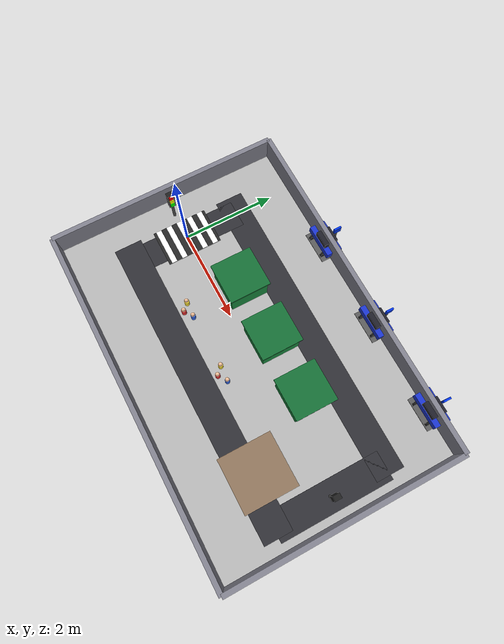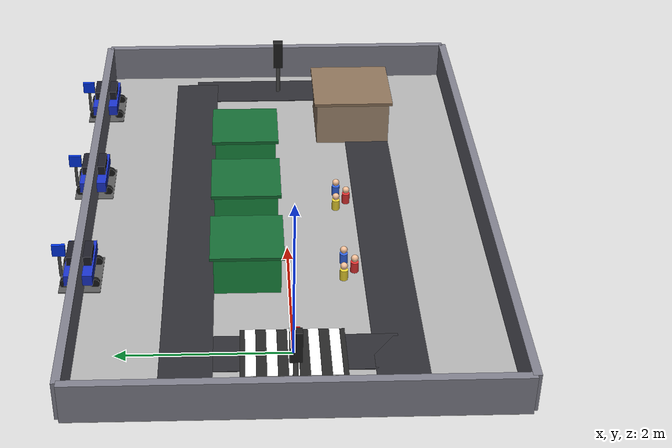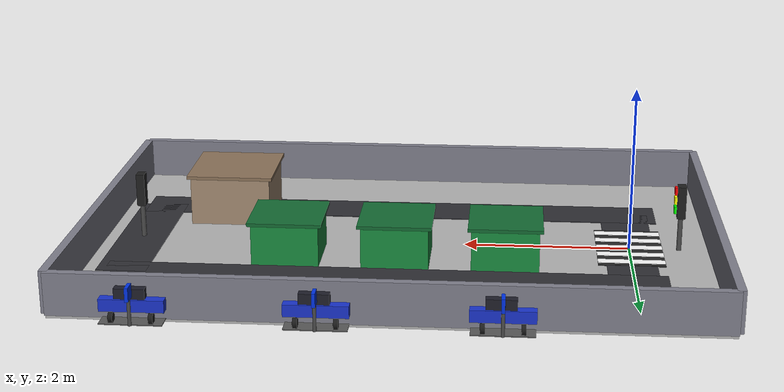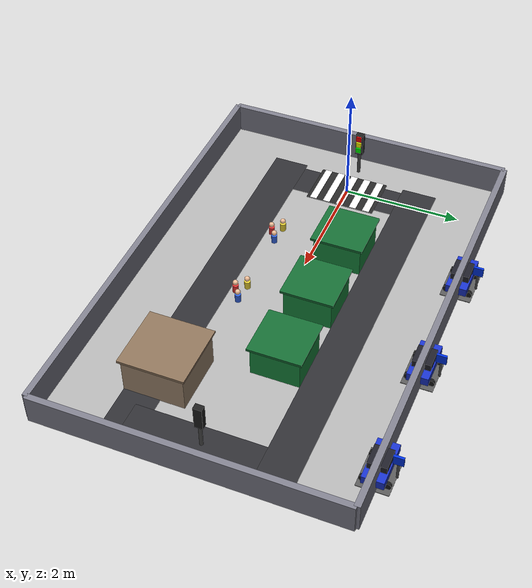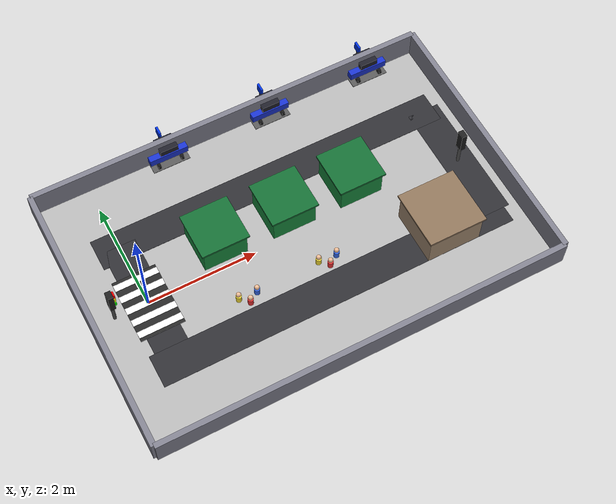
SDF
<?xml version="1.0" ?>
<sdf version="1.6">
  <world name="robot_nav_field">

    <!-- ======================= 物理引擎 ======================= -->
    <physics type="ode">
      <max_step_size>0.001</max_step_size>
      <real_time_factor>1</real_time_factor>
      <real_time_update_rate>1000</real_time_update_rate>
    </physics>

    <!-- ======================= 场景与光照 ======================= -->
    <scene>
      <ambient>0.45 0.45 0.45 1</ambient>
      <background>0.7 0.7 0.7 1</background>
      <shadows>true</shadows>
    </scene>

    <light name="sun" type="directional">
      <pose>0 0 10 0 0 0</pose>
      <diffuse>0.8 0.8 0.8 1</diffuse>
      <specular>0.1 0.1 0.1 1</specular>
      <direction>0.3 0.3 -1</direction>
      <cast_shadows>true</cast_shadows>
    </light>

    <!-- ============================================================
         1. 地面 (Ground Plane)  —— 7.5m x 5m, 上表面在 z=0
         ============================================================ -->
    <model name="ground_plane">
      <static>true</static>
      <pose>2.75 0 -0.025 0 0 0</pose>
      <link name="ground_link">
        <visual name="ground_visual">
          <geometry>
            <box><size>7.5 5.0 0.05</size></box>
          </geometry>
          <material>
            <ambient>0.70 0.70 0.70 1</ambient>
            <diffuse>0.70 0.70 0.70 1</diffuse>
          </material>
        </visual>
        <collision name="ground_collision">
          <geometry>
            <box><size>7.5 5.0 0.05</size></box>
          </geometry>
        </collision>
      </link>
    </model>

    <!-- ============================================================
         2. 外部围墙 (Boundary Walls)  —— 高 0.5m, 防机器人跑出
         ============================================================ -->
    <model name="boundary_walls">
      <static>true</static>
      <!-- 北墙 (顶部, X=-1.0) -->
      <link name="north_wall">
        <pose>-1.0 0 0.25 0 0 0</pose>
        <visual name="north_visual">
          <geometry><box><size>0.1 5.0 0.5</size></box></geometry>
          <material><ambient>0.50 0.50 0.55 1</ambient><diffuse>0.50 0.50 0.55 1</diffuse></material>
        </visual>
        <collision name="north_collision">
          <geometry><box><size>0.1 5.0 0.5</size></box></geometry>
        </collision>
      </link>
      <!-- 南墙 (底部, X=6.5) -->
      <link name="south_wall">
        <pose>6.5 0 0.25 0 0 0</pose>
        <visual name="south_visual">
          <geometry><box><size>0.1 5.0 0.5</size></box></geometry>
          <material><ambient>0.50 0.50 0.55 1</ambient><diffuse>0.50 0.50 0.55 1</diffuse></material>
        </visual>
        <collision name="south_collision">
          <geometry><box><size>0.1 5.0 0.5</size></box></geometry>
        </collision>
      </link>
      <!-- 西墙 (左侧, Y=-2.5) -->
      <link name="west_wall">
        <pose>2.75 -2.5 0.25 0 0 0</pose>
        <visual name="west_visual">
          <geometry><box><size>7.5 0.1 0.5</size></box></geometry>
          <material><ambient>0.50 0.50 0.55 1</ambient><diffuse>0.50 0.50 0.55 1</diffuse></material>
        </visual>
        <collision name="west_collision">
          <geometry><box><size>7.5 0.1 0.5</size></box></geometry>
        </collision>
      </link>
      <!-- 东墙 (右侧, Y=2.5) -->
      <link name="east_wall">
        <pose>2.75 2.5 0.25 0 0 0</pose>
        <visual name="east_visual">
          <geometry><box><size>7.5 0.1 0.5</size></box></geometry>
          <material><ambient>0.50 0.50 0.55 1</ambient><diffuse>0.50 0.50 0.55 1</diffuse></material>
        </visual>
        <collision name="east_collision">
          <geometry><box><size>7.5 0.1 0.5</size></box></geometry>
        </collision>
      </link>
    </model>

    <model name="roads">
      <static>true</static>
      <!-- 右侧主干道 -->
      <link name="road_right">
        <pose>2.9 1.2 0.005 0 0 0</pose>
        <visual name="road_right_visual">
          <geometry><box><size>6.6 0.6 0.01</size></box></geometry>
          <material><ambient>0.18 0.18 0.20 1</ambient><diffuse>0.18 0.18 0.20 1</diffuse></material>
        </visual>
        <collision name="road_right_collision">
          <geometry><box><size>6.6 0.6 0.01</size></box></geometry>
        </collision>
      </link>
      <!-- 左侧主干道 -->
      <link name="road_left">
        <pose>2.9 -1.2 0.005 0 0 0</pose>
        <visual name="road_left_visual">
          <geometry><box><size>6.6 0.6 0.01</size></box></geometry>
          <material><ambient>0.18 0.18 0.20 1</ambient><diffuse>0.18 0.18 0.20 1</diffuse></material>
        </visual>
        <collision name="road_left_collision">
          <geometry><box><size>6.6 0.6 0.01</size></box></geometry>
        </collision>
      </link>
      <!-- 顶部横向道路 (起点区) -->
      <link name="road_top">
        <pose>0 0 0.005 0 0 0</pose>
        <visual name="road_top_visual">
          <geometry><box><size>0.6 2.4 0.01</size></box></geometry>
          <material><ambient>0.18 0.18 0.20 1</ambient><diffuse>0.18 0.18 0.20 1</diffuse></material>
        </visual>
        <collision name="road_top_collision">
          <geometry><box><size>0.6 2.4 0.01</size></box></geometry>
        </collision>
      </link>
      <!-- 底部横向道路 (底部红绿灯路口) -->
      <link name="road_bottom">
        <pose>6.0 0 0.005 0 0 0</pose>
        <visual name="road_bottom_visual">
          <geometry><box><size>0.6 2.4 0.01</size></box></geometry>
          <material><ambient>0.18 0.18 0.20 1</ambient><diffuse>0.18 0.18 0.20 1</diffuse></material>
        </visual>
        <collision name="road_bottom_collision">
          <geometry><box><size>0.6 2.4 0.01</size></box></geometry>
        </collision>
      </link>
    </model>

    <!-- ============================================================
         4. 起点/终点区 (Start/Finish)  —— 斑马线, 中心 (0,0,0)
         ============================================================ -->
    <model name="zebra_crossing">
      <static>true</static>
      <link name="zebra_link">
        <!-- 深色底板 -->
        <visual name="zebra_base">
          <pose>0 0 0.006 0 0 0</pose>
          <geometry><box><size>0.8 1.2 0.012</size></box></geometry>
          <material><ambient>0.15 0.15 0.15 1</ambient><diffuse>0.15 0.15 0.15 1</diffuse></material>
        </visual>
        <collision name="zebra_base_col">
          <pose>0 0 0.006 0 0 0</pose>
          <geometry><box><size>0.8 1.2 0.012</size></box></geometry>
        </collision>
        <!-- 白色斑马条纹 (沿 Y 方向排布 5 条) -->
        <visual name="zebra_stripe_1">
          <pose>0 -0.48 0.013 0 0 0</pose>
          <geometry><box><size>0.8 0.12 0.014</size></box></geometry>
          <material><ambient>1 1 1 1</ambient><diffuse>1 1 1 1</diffuse></material>
        </visual>
        <visual name="zebra_stripe_2">
          <pose>0 -0.24 0.013 0 0 0</pose>
          <geometry><box><size>0.8 0.12 0.014</size></box></geometry>
          <material><ambient>1 1 1 1</ambient><diffuse>1 1 1 1</diffuse></material>
        </visual>
        <visual name="zebra_stripe_3">
          <pose>0 0 0.013 0 0 0</pose>
          <geometry><box><size>0.8 0.12 0.014</size></box></geometry>
          <material><ambient>1 1 1 1</ambient><diffuse>1 1 1 1</diffuse></material>
        </visual>
        <visual name="zebra_stripe_4">
          <pose>0 0.24 0.013 0 0 0</pose>
          <geometry><box><size>0.8 0.12 0.014</size></box></geometry>
          <material><ambient>1 1 1 1</ambient><diffuse>1 1 1 1</diffuse></material>
        </visual>
        <visual name="zebra_stripe_5">
          <pose>0 0.48 0.013 0 0 0</pose>
          <geometry><box><size>0.8 0.12 0.014</size></box></geometry>
          <material><ambient>1 1 1 1</ambient><diffuse>1 1 1 1</diffuse></material>
        </visual>
      </link>
    </model>

    <!-- ============================================================
         5. 顶部红绿灯  —— 立杆 + 红黄绿三灯, 位于起点线正前方 (-X)
         ============================================================ -->
    <model name="traffic_light_top">
      <static>true</static>
      <link name="tl_top_link">
        <!-- 立杆 -->
        <visual name="pole_visual">
          <pose>-0.6 0 0.3 0 0 0</pose>
          <geometry><cylinder><radius>0.03</radius><length>0.6</length></cylinder></geometry>
          <material><ambient>0.30 0.30 0.30 1</ambient><diffuse>0.30 0.30 0.30 1</diffuse></material>
        </visual>
        <collision name="pole_col">
          <pose>-0.6 0 0.3 0 0 0</pose>
          <geometry><cylinder><radius>0.03</radius><length>0.6</length></cylinder></geometry>
        </collision>
        <!-- 灯箱 -->
        <visual name="housing_visual">
          <pose>-0.6 0 0.62 0 0 0</pose>
          <geometry><box><size>0.10 0.14 0.40</size></box></geometry>
          <material><ambient>0.12 0.12 0.12 1</ambient><diffuse>0.12 0.12 0.12 1</diffuse></material>
        </visual>
        <collision name="housing_col">
          <pose>-0.6 0 0.62 0 0 0</pose>
          <geometry><box><size>0.10 0.14 0.40</size></box></geometry>
        </collision>
        <!-- 红灯 (上) -->
        <visual name="red_visual">
          <pose>-0.53 0 0.76 0 0 0</pose>
          <geometry><box><size>0.03 0.09 0.09</size></box></geometry>
          <material><ambient>1 0 0 1</ambient><diffuse>1 0 0 1</diffuse></material>
        </visual>
        <!-- 黄灯 (中) -->
        <visual name="yellow_visual">
          <pose>-0.53 0 0.64 0 0 0</pose>
          <geometry><box><size>0.03 0.09 0.09</size></box></geometry>
          <material><ambient>1 1 0 1</ambient><diffuse>1 1 0 1</diffuse></material>
        </visual>
        <!-- 绿灯 (下) -->
        <visual name="green_visual">
          <pose>-0.53 0 0.52 0 0 0</pose>
          <geometry><box><size>0.03 0.09 0.09</size></box></geometry>
          <material><ambient>0 1 0 1</ambient><diffuse>0 1 0 1</diffuse></material>
        </visual>
      </link>
    </model>

    <!-- ============================================================
         6. 底部红绿灯  —— 站房右侧 / 底部路口 (X≈6.0, Y=0)
         ============================================================ -->
    <model name="traffic_light_bottom">
      <static>true</static>
      <link name="tl_bottom_link">
        <visual name="pole_visual">
          <pose>6.0 0 0.3 0 0 0</pose>
          <geometry><cylinder><radius>0.03</radius><length>0.6</length></cylinder></geometry>
          <material><ambient>0.30 0.30 0.30 1</ambient><diffuse>0.30 0.30 0.30 1</diffuse></material>
        </visual>
        <collision name="pole_col">
          <pose>6.0 0 0.3 0 0 0</pose>
          <geometry><cylinder><radius>0.03</radius><length>0.6</length></cylinder></geometry>
        </collision>
        <visual name="housing_visual">
          <pose>6.0 0 0.62 0 0 0</pose>
          <geometry><box><size>0.10 0.14 0.40</size></box></geometry>
          <material><ambient>0.12 0.12 0.12 1</ambient><diffuse>0.12 0.12 0.12 1</diffuse></material>
        </visual>
        <collision name="housing_col">
          <pose>6.0 0 0.62 0 0 0</pose>
          <geometry><box><size>0.10 0.14 0.40</size></box></geometry>
        </collision>
        <visual name="red_visual">
          <pose>5.97 0 0.76 0 0 0</pose>
          <geometry><box><size>0.03 0.09 0.09</size></box></geometry>
          <material><ambient>1 0 0 1</ambient><diffuse>1 0 0 1</diffuse></material>
        </visual>
        <visual name="yellow_visual">
          <pose>5.97 0 0.64 0 0 0</pose>
          <geometry><box><size>0.03 0.09 0.09</size></box></geometry>
          <material><ambient>1 1 0 1</ambient><diffuse>1 1 0 1</diffuse></material>
        </visual>
        <visual name="green_visual">
          <pose>5.97 0 0.52 0 0 0</pose>
          <geometry><box><size>0.03 0.09 0.09</size></box></geometry>
          <material><ambient>0 1 0 1</ambient><diffuse>0 1 0 1</diffuse></material>
        </visual>
      </link>
    </model>

    <!-- ============================================================
         7. 中间建筑群 (楼宇 A / B / C)  —— 绿色长方体
         ============================================================ -->
    <model name="building_a">
      <static>true</static>
      <pose>1.5 0.5 0 0 0 0</pose>
      <link name="building_a_link">
        <visual name="body">
          <pose>0 0 0.25 0 0 0</pose>
          <geometry><box><size>0.8 0.8 0.5</size></box></geometry>
          <material><ambient>0.10 0.55 0.25 1</ambient><diffuse>0.10 0.55 0.25 1</diffuse></material>
        </visual>
        <collision name="body_col">
          <pose>0 0 0.25 0 0 0</pose>
          <geometry><box><size>0.8 0.8 0.5</size></box></geometry>
        </collision>
        <visual name="roof">
          <pose>0 0 0.52 0 0 0</pose>
          <geometry><box><size>0.88 0.88 0.04</size></box></geometry>
          <material><ambient>0.08 0.42 0.20 1</ambient><diffuse>0.08 0.42 0.20 1</diffuse></material>
        </visual>
      </link>
    </model>

    <model name="building_b">
      <static>true</static>
      <pose>2.8 0.5 0 0 0 0</pose>
      <link name="building_b_link">
        <visual name="body">
          <pose>0 0 0.25 0 0 0</pose>
          <geometry><box><size>0.8 0.8 0.5</size></box></geometry>
          <material><ambient>0.10 0.55 0.25 1</ambient><diffuse>0.10 0.55 0.25 1</diffuse></material>
        </visual>
        <collision name="body_col">
          <pose>0 0 0.25 0 0 0</pose>
          <geometry><box><size>0.8 0.8 0.5</size></box></geometry>
        </collision>
        <visual name="roof">
          <pose>0 0 0.52 0 0 0</pose>
          <geometry><box><size>0.88 0.88 0.04</size></box></geometry>
          <material><ambient>0.08 0.42 0.20 1</ambient><diffuse>0.08 0.42 0.20 1</diffuse></material>
        </visual>
      </link>
    </model>

    <model name="building_c">
      <static>true</static>
      <pose>4.1 0.5 0 0 0 0</pose>
      <link name="building_c_link">
        <visual name="body">
          <pose>0 0 0.25 0 0 0</pose>
          <geometry><box><size>0.8 0.8 0.5</size></box></geometry>
          <material><ambient>0.10 0.55 0.25 1</ambient><diffuse>0.10 0.55 0.25 1</diffuse></material>
        </visual>
        <collision name="body_col">
          <pose>0 0 0.25 0 0 0</pose>
          <geometry><box><size>0.8 0.8 0.5</size></box></geometry>
        </collision>
        <visual name="roof">
          <pose>0 0 0.52 0 0 0</pose>
          <geometry><box><size>0.88 0.88 0.04</size></box></geometry>
          <material><ambient>0.08 0.42 0.20 1</ambient><diffuse>0.08 0.42 0.20 1</diffuse></material>
        </visual>
      </link>
    </model>

    <model name="parking_slots">
      <static>true</static>
      <!-- 3号车位 -->
      <link name="slot_3">
        <pose>1.5 2.5 0.006 0 0 0</pose>
        <visual name="slot3_visual">
          <geometry><box><size>0.7 0.5 0.012</size></box></geometry>
          <material><ambient>0.35 0.35 0.35 1</ambient><diffuse>0.35 0.35 0.35 1</diffuse></material>
        </visual>
        <collision name="slot3_col">
          <geometry><box><size>0.7 0.5 0.012</size></box></geometry>
        </collision>
      </link>
      <!-- 2号车位 -->
      <link name="slot_2">
        <pose>3.5 2.5 0.006 0 0 0</pose>
        <visual name="slot2_visual">
          <geometry><box><size>0.7 0.5 0.012</size></box></geometry>
          <material><ambient>0.35 0.35 0.35 1</ambient><diffuse>0.35 0.35 0.35 1</diffuse></material>
        </visual>
        <collision name="slot2_col">
          <geometry><box><size>0.7 0.5 0.012</size></box></geometry>
        </collision>
      </link>
      <!-- 1号车位 -->
      <link name="slot_1">
        <pose>5.5 2.5 0.006 0 0 0</pose>
        <visual name="slot1_visual">
          <geometry><box><size>0.7 0.5 0.012</size></box></geometry>
          <material><ambient>0.35 0.35 0.35 1</ambient><diffuse>0.35 0.35 0.35 1</diffuse></material>
        </visual>
        <collision name="slot1_col">
          <geometry><box><size>0.7 0.5 0.012</size></box></geometry>
        </collision>
      </link>
    </model>

    <!-- ============================================================
         9. 蓝色电动车 (3辆)  —— 车身 + 车顶 + 4 轮
         ============================================================ -->
    <model name="car_3">
      <static>true</static>
      <pose>1.5 2.5 0 0 0 0</pose>
      <link name="car_3_link">
        <visual name="body">
          <pose>0 0 0.19 0 0 0</pose>
          <geometry><box><size>0.72 0.34 0.14</size></box></geometry>
          <material><ambient>0.10 0.20 0.80 1</ambient><diffuse>0.10 0.20 0.80 1</diffuse></material>
        </visual>
        <collision name="body_col">
          <pose>0 0 0.19 0 0 0</pose>
          <geometry><box><size>0.72 0.34 0.14</size></box></geometry>
        </collision>
        <visual name="cabin">
          <pose>0.02 0 0.32 0 0 0</pose>
          <geometry><box><size>0.34 0.30 0.12</size></box></geometry>
          <material><ambient>0.12 0.12 0.16 1</ambient><diffuse>0.12 0.12 0.16 1</diffuse></material>
        </visual>
        <collision name="cabin_col">
          <pose>0.02 0 0.32 0 0 0</pose>
          <geometry><box><size>0.34 0.30 0.12</size></box></geometry>
        </collision>
        <visual name="wheel_fr"><pose>0.22 0.18 0.06 0 1.5708 0</pose><geometry><cylinder><radius>0.06</radius><length>0.05</length></cylinder></geometry><material><ambient>0.10 0.10 0.10 1</ambient><diffuse>0.10 0.10 0.10 1</diffuse></material></visual>
        <visual name="wheel_fl"><pose>0.22 -0.18 0.06 0 1.5708 0</pose><geometry><cylinder><radius>0.06</radius><length>0.05</length></cylinder></geometry><material><ambient>0.10 0.10 0.10 1</ambient><diffuse>0.10 0.10 0.10 1</diffuse></material></visual>
        <visual name="wheel_rr"><pose>-0.22 0.18 0.06 0 1.5708 0</pose><geometry><cylinder><radius>0.06</radius><length>0.05</length></cylinder></geometry><material><ambient>0.10 0.10 0.10 1</ambient><diffuse>0.10 0.10 0.10 1</diffuse></material></visual>
        <visual name="wheel_rl"><pose>-0.22 -0.18 0.06 0 1.5708 0</pose><geometry><cylinder><radius>0.06</radius><length>0.05</length></cylinder></geometry><material><ambient>0.10 0.10 0.10 1</ambient><diffuse>0.10 0.10 0.10 1</diffuse></material></visual>
      </link>
    </model>

    <model name="car_2">
      <static>true</static>
      <pose>3.5 2.5 0 0 0 0</pose>
      <link name="car_2_link">
        <visual name="body">
          <pose>0 0 0.19 0 0 0</pose>
          <geometry><box><size>0.72 0.34 0.14</size></box></geometry>
          <material><ambient>0.10 0.20 0.80 1</ambient><diffuse>0.10 0.20 0.80 1</diffuse></material>
        </visual>
        <collision name="body_col">
          <pose>0 0 0.19 0 0 0</pose>
          <geometry><box><size>0.72 0.34 0.14</size></box></geometry>
        </collision>
        <visual name="cabin">
          <pose>0.02 0 0.32 0 0 0</pose>
          <geometry><box><size>0.34 0.30 0.12</size></box></geometry>
          <material><ambient>0.12 0.12 0.16 1</ambient><diffuse>0.12 0.12 0.16 1</diffuse></material>
        </visual>
        <collision name="cabin_col">
          <pose>0.02 0 0.32 0 0 0</pose>
          <geometry><box><size>0.34 0.30 0.12</size></box></geometry>
        </collision>
        <visual name="wheel_fr"><pose>0.22 0.18 0.06 0 1.5708 0</pose><geometry><cylinder><radius>0.06</radius><length>0.05</length></cylinder></geometry><material><ambient>0.10 0.10 0.10 1</ambient><diffuse>0.10 0.10 0.10 1</diffuse></material></visual>
        <visual name="wheel_fl"><pose>0.22 -0.18 0.06 0 1.5708 0</pose><geometry><cylinder><radius>0.06</radius><length>0.05</length></cylinder></geometry><material><ambient>0.10 0.10 0.10 1</ambient><diffuse>0.10 0.10 0.10 1</diffuse></material></visual>
        <visual name="wheel_rr"><pose>-0.22 0.18 0.06 0 1.5708 0</pose><geometry><cylinder><radius>0.06</radius><length>0.05</length></cylinder></geometry><material><ambient>0.10 0.10 0.10 1</ambient><diffuse>0.10 0.10 0.10 1</diffuse></material></visual>
        <visual name="wheel_rl"><pose>-0.22 -0.18 0.06 0 1.5708 0</pose><geometry><cylinder><radius>0.06</radius><length>0.05</length></cylinder></geometry><material><ambient>0.10 0.10 0.10 1</ambient><diffuse>0.10 0.10 0.10 1</diffuse></material></visual>
      </link>
    </model>

    <model name="car_1">
      <static>true</static>
      <pose>5.5 2.5 0 0 0 0</pose>
      <link name="car_1_link">
        <visual name="body">
          <pose>0 0 0.19 0 0 0</pose>
          <geometry><box><size>0.72 0.34 0.14</size></box></geometry>
          <material><ambient>0.10 0.20 0.80 1</ambient><diffuse>0.10 0.20 0.80 1</diffuse></material>
        </visual>
        <collision name="body_col">
          <pose>0 0 0.19 0 0 0</pose>
          <geometry><box><size>0.72 0.34 0.14</size></box></geometry>
        </collision>
        <visual name="cabin">
          <pose>0.02 0 0.32 0 0 0</pose>
          <geometry><box><size>0.34 0.30 0.12</size></box></geometry>
          <material><ambient>0.12 0.12 0.16 1</ambient><diffuse>0.12 0.12 0.16 1</diffuse></material>
        </visual>
        <collision name="cabin_col">
          <pose>0.02 0 0.32 0 0 0</pose>
          <geometry><box><size>0.34 0.30 0.12</size></box></geometry>
        </collision>
        <visual name="wheel_fr"><pose>0.22 0.18 0.06 0 1.5708 0</pose><geometry><cylinder><radius>0.06</radius><length>0.05</length></cylinder></geometry><material><ambient>0.10 0.10 0.10 1</ambient><diffuse>0.10 0.10 0.10 1</diffuse></material></visual>
        <visual name="wheel_fl"><pose>0.22 -0.18 0.06 0 1.5708 0</pose><geometry><cylinder><radius>0.06</radius><length>0.05</length></cylinder></geometry><material><ambient>0.10 0.10 0.10 1</ambient><diffuse>0.10 0.10 0.10 1</diffuse></material></visual>
        <visual name="wheel_rr"><pose>-0.22 0.18 0.06 0 1.5708 0</pose><geometry><cylinder><radius>0.06</radius><length>0.05</length></cylinder></geometry><material><ambient>0.10 0.10 0.10 1</ambient><diffuse>0.10 0.10 0.10 1</diffuse></material></visual>
        <visual name="wheel_rl"><pose>-0.22 -0.18 0.06 0 1.5708 0</pose><geometry><cylinder><radius>0.06</radius><length>0.05</length></cylinder></geometry><material><ambient>0.10 0.10 0.10 1</ambient><diffuse>0.10 0.10 0.10 1</diffuse></material></visual>
      </link>
    </model>

    <!-- ============================================================
         10. 蓝色 P 字指示牌 (每个车位旁一个)
         ============================================================ -->
    <model name="p_sign_3">
      <static>true</static>
      <pose>1.5 2.75 0 0 0 0</pose>
      <link name="ps3_link">
        <visual name="pole">
          <pose>0 0 0.175 0 0 0</pose>
          <geometry><cylinder><radius>0.02</radius><length>0.35</length></cylinder></geometry>
          <material><ambient>0.30 0.30 0.30 1</ambient><diffuse>0.30 0.30 0.30 1</diffuse></material>
        </visual>
        <collision name="pole_col">
          <pose>0 0 0.175 0 0 0</pose>
          <geometry><cylinder><radius>0.02</radius><length>0.35</length></cylinder></geometry>
        </collision>
        <visual name="sign">
          <pose>0 0 0.38 0 0 0</pose>
          <geometry><box><size>0.04 0.16 0.16</size></box></geometry>
          <material><ambient>0.00 0.20 0.90 1</ambient><diffuse>0.00 0.20 0.90 1</diffuse></material>
        </visual>
      </link>
    </model>

    <model name="p_sign_2">
      <static>true</static>
      <pose>3.5 2.75 0 0 0 0</pose>
      <link name="ps2_link">
        <visual name="pole">
          <pose>0 0 0.175 0 0 0</pose>
          <geometry><cylinder><radius>0.02</radius><length>0.35</length></cylinder></geometry>
          <material><ambient>0.30 0.30 0.30 1</ambient><diffuse>0.30 0.30 0.30 1</diffuse></material>
        </visual>
        <collision name="pole_col">
          <pose>0 0 0.175 0 0 0</pose>
          <geometry><cylinder><radius>0.02</radius><length>0.35</length></cylinder></geometry>
        </collision>
        <visual name="sign">
          <pose>0 0 0.38 0 0 0</pose>
          <geometry><box><size>0.04 0.16 0.16</size></box></geometry>
          <material><ambient>0.00 0.20 0.90 1</ambient><diffuse>0.00 0.20 0.90 1</diffuse></material>
        </visual>
      </link>
    </model>

    <model name="p_sign_1">
      <static>true</static>
      <pose>5.5 2.75 0 0 0 0</pose>
      <link name="ps1_link">
        <visual name="pole">
          <pose>0 0 0.175 0 0 0</pose>
          <geometry><cylinder><radius>0.02</radius><length>0.35</length></cylinder></geometry>
          <material><ambient>0.30 0.30 0.30 1</ambient><diffuse>0.30 0.30 0.30 1</diffuse></material>
        </visual>
        <collision name="pole_col">
          <pose>0 0 0.175 0 0 0</pose>
          <geometry><cylinder><radius>0.02</radius><length>0.35</length></cylinder></geometry>
        </collision>
        <visual name="sign">
          <pose>0 0 0.38 0 0 0</pose>
          <geometry><box><size>0.04 0.16 0.16</size></box></geometry>
          <material><ambient>0.00 0.20 0.90 1</ambient><diffuse>0.00 0.20 0.90 1</diffuse></material>
        </visual>
      </link>
    </model>

    <!-- ============================================================
         11. 左侧 A街区 / 人偶区 (上方人群)  —— 楼宇A左侧 (1.5, -0.8)
         ============================================================ -->
    <model name="crowd_a">
      <static>true</static>
      <pose>1.5 -0.8 0 0 0 0</pose>
      <link name="crowd_a_link">
        <!-- 人偶1 (红) -->
        <visual name="p1_body">
          <pose>0 0 0.07 0 0 0</pose>
          <geometry><cylinder><radius>0.05</radius><length>0.14</length></cylinder></geometry>
          <material><ambient>0.90 0.20 0.20 1</ambient><diffuse>0.90 0.20 0.20 1</diffuse></material>
        </visual>
        <visual name="p1_head">
          <pose>0 0 0.19 0 0 0</pose>
          <geometry><sphere><radius>0.045</radius></sphere></geometry>
          <material><ambient>0.95 0.75 0.60 1</ambient><diffuse>0.95 0.75 0.60 1</diffuse></material>
        </visual>
        <!-- 人偶2 (蓝) -->
        <visual name="p2_body">
          <pose>0.18 0.12 0.07 0 0 0</pose>
          <geometry><cylinder><radius>0.05</radius><length>0.14</length></cylinder></geometry>
          <material><ambient>0.20 0.40 0.90 1</ambient><diffuse>0.20 0.40 0.90 1</diffuse></material>
        </visual>
        <visual name="p2_head">
          <pose>0.18 0.12 0.19 0 0 0</pose>
          <geometry><sphere><radius>0.045</radius></sphere></geometry>
          <material><ambient>0.95 0.75 0.60 1</ambient><diffuse>0.95 0.75 0.60 1</diffuse></material>
        </visual>
        <!-- 人偶3 (黄) -->
        <visual name="p3_body">
          <pose>-0.15 0.14 0.07 0 0 0</pose>
          <geometry><cylinder><radius>0.05</radius><length>0.14</length></cylinder></geometry>
          <material><ambient>0.95 0.85 0.20 1</ambient><diffuse>0.95 0.85 0.20 1</diffuse></material>
        </visual>
        <visual name="p3_head">
          <pose>-0.15 0.14 0.19 0 0 0</pose>
          <geometry><sphere><radius>0.045</radius></sphere></geometry>
          <material><ambient>0.95 0.75 0.60 1</ambient><diffuse>0.95 0.75 0.60 1</diffuse></material>
        </visual>
      </link>
    </model>

    <!-- ============================================================
         12. 左侧 B街区 / 人偶区 (中间人群)  —— 楼宇B左侧 (3.0, -0.8)
         ============================================================ -->
    <model name="crowd_b">
      <static>true</static>
      <pose>3.0 -0.8 0 0 0 0</pose>
      <link name="crowd_b_link">
        <visual name="p1_body">
          <pose>0 0 0.07 0 0 0</pose>
          <geometry><cylinder><radius>0.05</radius><length>0.14</length></cylinder></geometry>
          <material><ambient>0.90 0.20 0.20 1</ambient><diffuse>0.90 0.20 0.20 1</diffuse></material>
        </visual>
        <visual name="p1_head">
          <pose>0 0 0.19 0 0 0</pose>
          <geometry><sphere><radius>0.045</radius></sphere></geometry>
          <material><ambient>0.95 0.75 0.60 1</ambient><diffuse>0.95 0.75 0.60 1</diffuse></material>
        </visual>
        <visual name="p2_body">
          <pose>0.18 0.12 0.07 0 0 0</pose>
          <geometry><cylinder><radius>0.05</radius><length>0.14</length></cylinder></geometry>
          <material><ambient>0.20 0.40 0.90 1</ambient><diffuse>0.20 0.40 0.90 1</diffuse></material>
        </visual>
        <visual name="p2_head">
          <pose>0.18 0.12 0.19 0 0 0</pose>
          <geometry><sphere><radius>0.045</radius></sphere></geometry>
          <material><ambient>0.95 0.75 0.60 1</ambient><diffuse>0.95 0.75 0.60 1</diffuse></material>
        </visual>
        <visual name="p3_body">
          <pose>-0.15 0.14 0.07 0 0 0</pose>
          <geometry><cylinder><radius>0.05</radius><length>0.14</length></cylinder></geometry>
          <material><ambient>0.95 0.85 0.20 1</ambient><diffuse>0.95 0.85 0.20 1</diffuse></material>
        </visual>
        <visual name="p3_head">
          <pose>-0.15 0.14 0.19 0 0 0</pose>
          <geometry><sphere><radius>0.045</radius></sphere></geometry>
          <material><ambient>0.95 0.75 0.60 1</ambient><diffuse>0.95 0.75 0.60 1</diffuse></material>
        </visual>
      </link>
    </model>

    <!-- ============================================================
         13. 站房 & 楼宇D  —— 场地左下角 (5.0, -1.0), 较大建筑块
         ============================================================ -->
    <model name="station_building_d">
      <static>true</static>
      <pose>5.0 -1.0 0 0 0 0</pose>
      <link name="station_link">
        <visual name="body">
          <pose>0 0 0.30 0 0 0</pose>
          <geometry><box><size>1.0 1.0 0.6</size></box></geometry>
          <material><ambient>0.65 0.55 0.45 1</ambient><diffuse>0.65 0.55 0.45 1</diffuse></material>
        </visual>
        <collision name="body_col">
          <pose>0 0 0.30 0 0 0</pose>
          <geometry><box><size>1.0 1.0 0.6</size></box></geometry>
        </collision>
        <visual name="roof">
          <pose>0 0 0.62 0 0 0</pose>
          <geometry><box><size>1.08 1.08 0.04</size></box></geometry>
          <material><ambient>0.55 0.45 0.35 1</ambient><diffuse>0.55 0.45 0.35 1</diffuse></material>
        </visual>
      </link>
    </model>

  </world>
</sdf>
